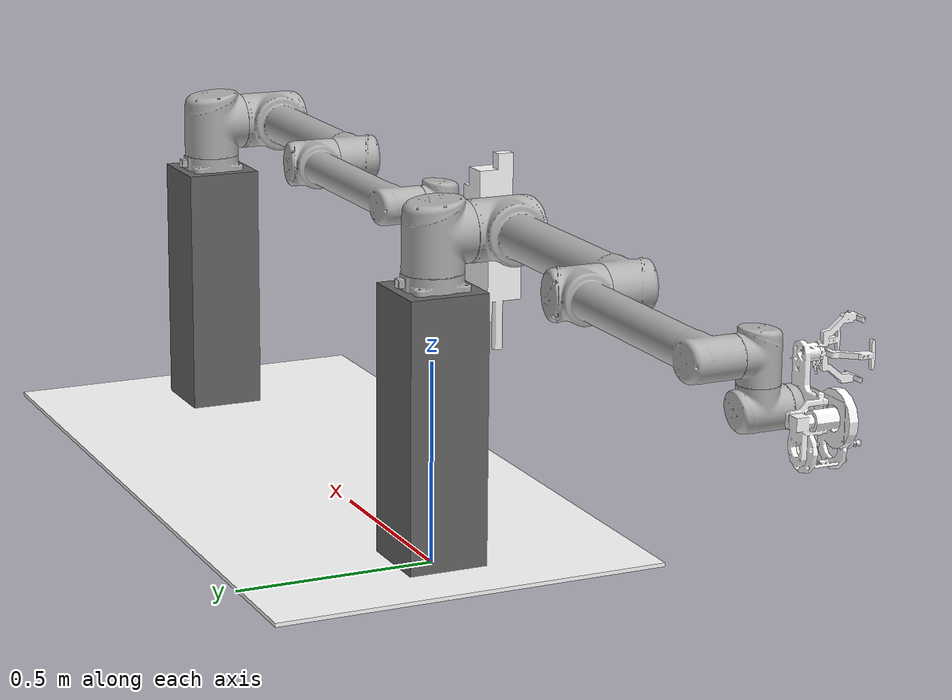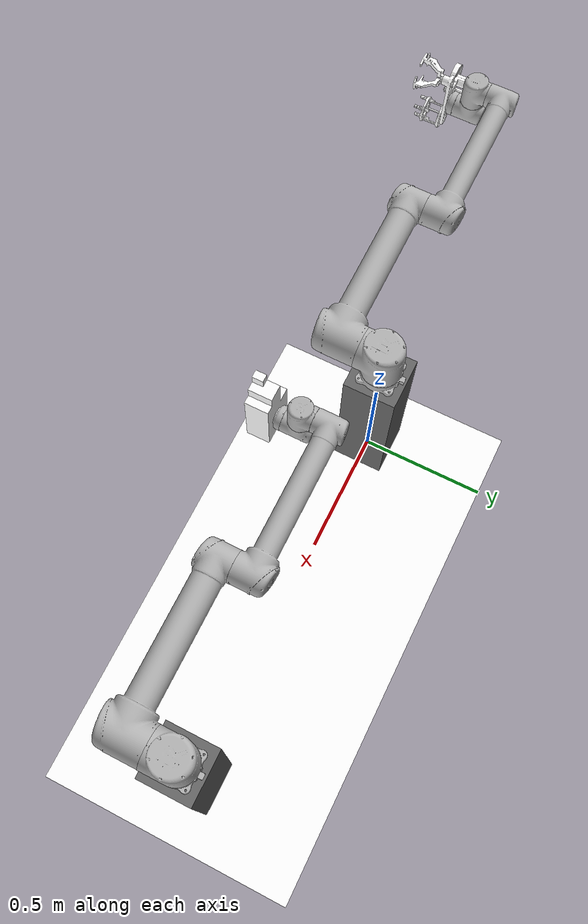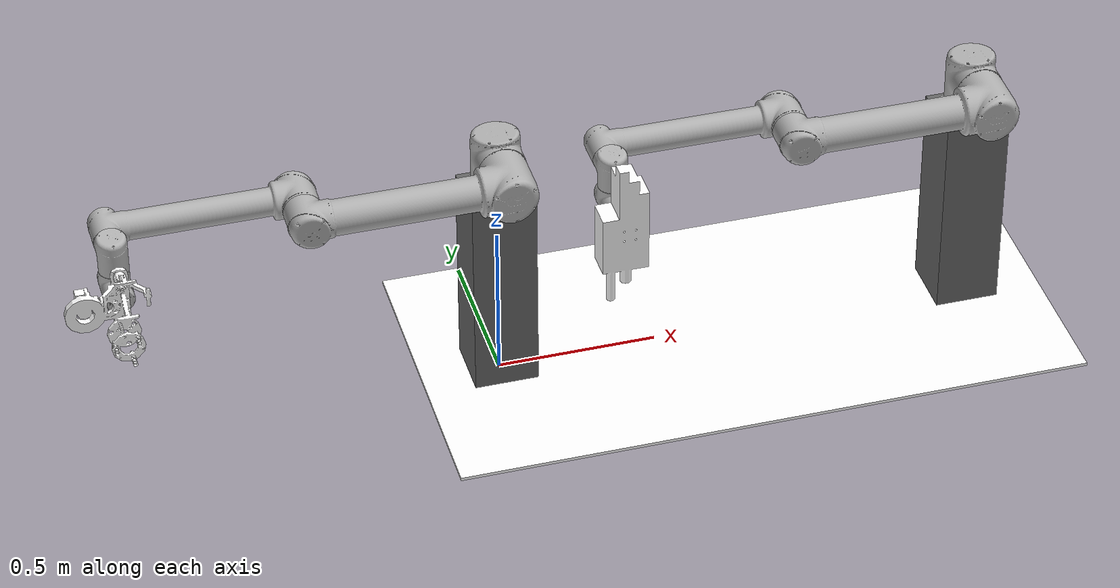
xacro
<?xml version="1.0"?>
<robot xmlns:xacro="http://www.ros.org/wiki/xacro"
       name="dual_ur10_robot">

  <xacro:property name="pi" value="3.1415926535897931"/>
  <xacro:arg name="prefix_robot1" default="robot1_"/>
  <xacro:arg name="prefix_robot2" default="robot2_"/>
  <xacro:arg name="limited_robot1" default="false"/>
  <xacro:arg name="limited_robot2" default="false"/>

  <!-- common stuff -->
  <xacro:include filename="$(find ur_description)/urdf/common.gazebo.xacro"/>

  <!-- robot1 -->
  <xacro:include filename="$(find ur_description)/urdf/robot1_ur10.urdf.xacro"/> <!-- file has been edited because of same variable names in ur5 and ur10 -->

  <!-- robot2 -->
  <xacro:include filename="$(find ur_description)/urdf/robot2_ur10.urdf.xacro"/> <!-- original file has been edited because of same variable names in ur5 and ur10 -->

  <!-- endeffector -->
  <xacro:include filename="$(find ur_description)/urdf/robot1_endeffector.urdf.xacro"/>
  <xacro:include filename="$(find ur_description)/urdf/robot2_endeffector.urdf.xacro"/>

  <!-- table -->
  <xacro:include filename="$(find ur_description)/urdf/table.urdf.xacro"/>

  <!-- place table -->
  <xacro:table/>

  <!-- place world reference -->
  <!-- place ur10 robot1 -->
  <xacro:ur10_robot1 prefix="$(arg prefix_robot1)" joint_limited="$(arg limited_robot1)"/>
  <joint name="$(arg prefix_robot1)platform_mount" type="fixed">
    <parent link="$(arg prefix_robot1)table_platform"/>
    <child link ="$(arg prefix_robot1)base_link"/>
    <origin xyz="0 0 0.68" rpy="0 0 ${pi}" />
  </joint>

  <!-- place robot1 endeffector -->
  <xacro:robot1_endeffector prefix="$(arg prefix_robot1)"/>
  <joint name="$(arg prefix_robot1)ee_mount" type="fixed">
    <parent link="$(arg prefix_robot1)ee_link" />
    <child link = "$(arg prefix_robot1)rg2_body_link" />
    <origin rpy="0 0 0" xyz="0.0 0 0.0"/>
  </joint>
  <!-- place ur10 robot2 -->
  <xacro:ur10_robot2 prefix="$(arg prefix_robot2)" joint_limited="$(arg limited_robot2)"/>
  <joint name="$(arg prefix_robot2)platform_mount" type="fixed">
    <parent link="$(arg prefix_robot2)table_platform"/>
    <child link ="$(arg prefix_robot2)base_link"/>
    <origin xyz="0 0 0.68" rpy="0 0 ${pi}" />
  </joint>

  <!-- place robot2 endeffector -->
  <xacro:robot2_endeffector prefix="$(arg prefix_robot2)"/>
  <joint name="$(arg prefix_robot2)ee_mount" type="fixed">
    <parent link="$(arg prefix_robot2)ee_link" />
    <child link = "$(arg prefix_robot2)rg2_body_link" />
    <origin rpy="1.5707963268 1.5707963268 0" xyz="0.0 0.0108 -0.0062"/>
  </joint>
</robot>

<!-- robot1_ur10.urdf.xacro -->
<robot xmlns:xacro="http://www.ros.org/wiki/xacro">
<!-- edited by Daniel Hoeltgen-->

<!--
  Author: Kelsey Hawkins
  Contributers: Jimmy Da Silva, Ajit Krisshna N L, Muhammad Asif Rana
-->

  <xacro:include filename="$(find ur_description)/urdf/ur.transmission.xacro" />
  <xacro:include filename="$(find ur_description)/urdf/ur.gazebo.xacro" />

  <property name="pi" value="3.14159265" />

  <!-- Inertia parameters -->
  <property name="ur10_base_mass" value="4.0" />  <!-- This mass might be incorrect -->
  <property name="ur10_shoulder_mass" value="7.778" />
  <property name="ur10_upper_arm_mass" value="12.93" />
  <property name="ur10_forearm_mass" value="3.87" />
  <property name="ur10_wrist_1_mass" value="1.96" />
  <property name="ur10_wrist_2_mass" value="1.96" />
  <property name="ur10_wrist_3_mass" value="0.202" />

  <property name="ur10_shoulder_cog" value="0.00008 0.00244 -0.037" />
  <property name="ur10_upper_arm_cog" value="0.00001 0.15061 0.38757" />
  <property name="ur10_forearm_cog" value="-0.00012 0.06112 0.1984" />
  <property name="ur10_wrist_1_cog" value="-0.00021 -0.00112 0.02269" />
  <property name="ur10_wrist_2_cog" value="-0.00021 0.00112 0.002269" />
  <property name="ur10_wrist_3_cog" value="0 -0.001156 -0.00149" />

  <!-- Kinematic model -->
  <!-- Properties from urcontrol.conf -->
  <property name="ur10_d1" value="0.1273" />
  <property name="ur10_a2" value="-0.612" />
  <property name="ur10_a3" value="-0.5723" />
  <property name="ur10_d4" value="0.163941" />
  <property name="ur10_d5" value="0.1157" />
  <property name="ur10_d6" value="0.0922" />

  <!-- Arbitrary offsets for shoulder/elbow joints -->
  <property name="ur10_shoulder_offset" value="0.220941" />  <!-- measured from model -->
  <property name="ur10_elbow_offset" value="-0.1719" /> <!-- measured from model -->

  <!-- link lengths used in model -->
  <property name="ur10_shoulder_height" value="${ur10_d1}" />
  <property name="ur10_upper_arm_length" value="${-ur10_a2}" />
  <property name="ur10_forearm_length" value="${-ur10_a3}" />
  <property name="ur10_wrist_1_length" value="${ur10_d4 - ur10_elbow_offset - ur10_shoulder_offset}" />
  <property name="ur10_wrist_2_length" value="${ur10_d5}" />
  <property name="ur10_wrist_3_length" value="${ur10_d6}" />

  <xacro:macro name="cylinder_inertial" params="radius length mass *origin">
    <inertial>
      <mass value="${mass}" />
      <insert_block name="origin" />
      <inertia ixx="${0.0833333 * mass * (3 * radius * radius + length * length)}" ixy="0.0" ixz="0.0"
        iyy="${0.0833333 * mass * (3 * radius * radius + length * length)}" iyz="0.0"
        izz="${0.5 * mass * radius * radius}" />
    </inertial>
  </xacro:macro>

  <xacro:macro name="ur10_robot1" params="prefix joint_limited">

    <link name="${prefix}base_link" >
      <visual>
        <geometry>
          <mesh filename="package://ur_description/meshes/ur10/visual/base.dae"/>
        </geometry>
        <material name="LightGrey">
          <color rgba="0.7 0.7 0.7 1.0"/>
        </material>
      </visual>
      <collision>
        <geometry>
          <mesh filename="package://ur_description/meshes/ur10/collision/base.stl"/>
        </geometry>
      </collision>
      <xacro:cylinder_inertial radius="0.075" length="0.038" mass="${ur10_base_mass}">
        <origin xyz="0.0 0.0 0.0" rpy="0 0 0" />
      </xacro:cylinder_inertial>
    </link>

    <joint name="${prefix}shoulder_pan_joint" type="revolute">
      <parent link="${prefix}base_link" />
      <child link = "${prefix}shoulder_link" />
      <origin xyz="0.0 0.0 ${ur10_shoulder_height}" rpy="0.0 0.0 0.0" />
      <axis xyz="0 0 1" />
      <xacro:unless value="${joint_limited}">
        <limit lower="${-2.0 * pi}" upper="${2.0 * pi}" effort="330.0" velocity="2.16"/>
      </xacro:unless>
      <xacro:if value="${joint_limited}">
        <limit lower="${-pi}" upper="${pi}" effort="330.0" velocity="2.16"/>
      </xacro:if>
      <dynamics damping="0.0" friction="0.0"/>
    </joint>

    <link name="${prefix}shoulder_link">
      <visual>
        <geometry>
          <mesh filename="package://ur_description/meshes/ur10/visual/shoulder.dae"/>
        </geometry>
        <material name="LightGrey">
          <color rgba="0.7 0.7 0.7 1.0"/>
        </material>
      </visual>
      <collision>
        <geometry>
          <mesh filename="package://ur_description/meshes/ur10/collision/shoulder.stl"/>
        </geometry>
      </collision>
      <xacro:cylinder_inertial radius="0.075" length="0.178" mass="${ur10_shoulder_mass}">
        <origin xyz="0.0 0.0 0.0" rpy="0 0 0" />
      </xacro:cylinder_inertial>
    </link>

    <joint name="${prefix}shoulder_lift_joint" type="revolute">
      <parent link="${prefix}shoulder_link" />
      <child link = "${prefix}upper_arm_link" />
      <origin xyz="0.0 ${ur10_shoulder_offset} 0.0" rpy="0.0 ${pi / 2.0} 0.0" />
      <axis xyz="0 1 0" />
      <xacro:unless value="${joint_limited}">
        <limit lower="${-2.0 * pi}" upper="${2.0 * pi}" effort="330.0" velocity="2.16"/>
      </xacro:unless>
      <xacro:if value="${joint_limited}">
        <limit lower="${-pi}" upper="${pi}" effort="330.0" velocity="2.16"/>
      </xacro:if>
      <dynamics damping="0.0" friction="0.0"/>
    </joint>

    <link name="${prefix}upper_arm_link">
      <visual>
        <geometry>
          <mesh filename="package://ur_description/meshes/ur10/visual/upperarm.dae"/>
        </geometry>
        <material name="LightGrey">
          <color rgba="0.7 0.7 0.7 1.0"/>
        </material>
      </visual>
      <collision>
        <geometry>
          <mesh filename="package://ur_description/meshes/ur10/collision/upperarm.stl"/>
        </geometry>
      </collision>
      <xacro:cylinder_inertial radius="0.075" length="${-ur10_a2}" mass="${ur10_upper_arm_mass}">
        <origin xyz="0.0 0.0 ${-ur10_a2/2.0}" rpy="0 0 0" />
      </xacro:cylinder_inertial>
    </link>

    <joint name="${prefix}elbow_joint" type="revolute">
      <parent link="${prefix}upper_arm_link" />
      <child link = "${prefix}forearm_link" />
      <origin xyz="0.0 ${ur10_elbow_offset} ${ur10_upper_arm_length}" rpy="0.0 0.0 0.0" />
      <axis xyz="0 1 0" />
      <xacro:unless value="${joint_limited}">
        <limit lower="${-2.0 * pi}" upper="${2.0 * pi}" effort="150.0" velocity="3.15"/>
      </xacro:unless>
      <xacro:if value="${joint_limited}">
        <limit lower="${-pi}" upper="${pi}" effort="150.0" velocity="3.15"/>
      </xacro:if>
      <dynamics damping="0.0" friction="0.0"/>
    </joint>

    <link name="${prefix}forearm_link">
      <visual>
         <geometry>
          <mesh filename="package://ur_description/meshes/ur10/visual/forearm.dae"/>
        </geometry>
        <material name="LightGrey">
          <color rgba="0.7 0.7 0.7 1.0"/>
        </material>
      </visual>
      <collision>
        <geometry>
          <mesh filename="package://ur_description/meshes/ur10/collision/forearm.stl"/>
        </geometry>
      </collision>
      <xacro:cylinder_inertial radius="0.075" length="${-ur10_a3}" mass="${ur10_forearm_mass}">
        <origin xyz="0.0 0.0 ${-ur10_a3/2.0}" rpy="0 0 0" />
      </xacro:cylinder_inertial>
    </link>

    <joint name="${prefix}wrist_1_joint" type="revolute">
      <parent link="${prefix}forearm_link" />
      <child link = "${prefix}wrist_1_link" />
      <origin xyz="0.0 0.0 ${ur10_forearm_length}" rpy="0.0 ${pi / 2.0} 0.0" />
      <axis xyz="0 1 0" />
      <xacro:unless value="${joint_limited}">
        <limit lower="${-2.0 * pi}" upper="${2.0 * pi}" effort="54.0" velocity="3.2"/>
      </xacro:unless>
      <xacro:if value="${joint_limited}">
        <limit lower="${-pi}" upper="${pi}" effort="54.0" velocity="3.2"/>
      </xacro:if>
      <dynamics damping="0.0" friction="0.0"/>
    </joint>

    <link name="${prefix}wrist_1_link">
      <visual>
        <geometry>
          <mesh filename="package://ur_description/meshes/ur10/visual/wrist1.dae"/>
        </geometry>
        <material name="LightGrey">
          <color rgba="0.7 0.7 0.7 1.0"/>
        </material>
      </visual>
      <collision>
        <geometry>
          <mesh filename="package://ur_description/meshes/ur10/collision/wrist1.stl"/>
        </geometry>
      </collision>
      <xacro:cylinder_inertial radius="0.075" length="0.12" mass="${ur10_wrist_1_mass}">
        <origin xyz="0.0 0.0 0.0" rpy="0 0 0" />
      </xacro:cylinder_inertial>
    </link>

    <joint name="${prefix}wrist_2_joint" type="revolute">
      <parent link="${prefix}wrist_1_link" />
      <child link = "${prefix}wrist_2_link" />
      <origin xyz="0.0 ${ur10_wrist_1_length} 0.0" rpy="0.0 0.0 0.0" />
      <axis xyz="0 0 1" />
      <xacro:unless value="${joint_limited}">
        <limit lower="${-2.0 * pi}" upper="${2.0 * pi}" effort="54.0" velocity="3.2"/>
      </xacro:unless>
      <xacro:if value="${joint_limited}">
        <limit lower="${-pi}" upper="${pi}" effort="54.0" velocity="3.2"/>
      </xacro:if>
      <dynamics damping="0.0" friction="0.0"/>
    </joint>

    <link name="${prefix}wrist_2_link">
      <visual>
        <geometry>
          <mesh filename="package://ur_description/meshes/ur10/visual/wrist2.dae"/>
        </geometry>
        <material name="LightGrey">
          <color rgba="0.7 0.7 0.7 1.0"/>
        </material>
      </visual>
      <collision>
        <geometry>
          <mesh filename="package://ur_description/meshes/ur10/collision/wrist2.stl"/>
        </geometry>
      </collision>
      <xacro:cylinder_inertial radius="0.075" length="0.12" mass="${ur10_wrist_2_mass}">
        <origin xyz="0.0 0.0 0.0" rpy="0 0 0" />
      </xacro:cylinder_inertial>
    </link>

    <joint name="${prefix}wrist_3_joint" type="revolute">
      <parent link="${prefix}wrist_2_link" />
      <child link = "${prefix}wrist_3_link" />
      <origin xyz="0.0 0.0 ${ur10_wrist_2_length}" rpy="0.0 0.0 0.0" />
      <axis xyz="0 1 0" />
      <xacro:unless value="${joint_limited}">
        <limit lower="${-2.0 * pi}" upper="${2.0 * pi}" effort="54.0" velocity="3.2"/>
      </xacro:unless>
      <xacro:if value="${joint_limited}">
        <limit lower="${-pi}" upper="${pi}" effort="54.0" velocity="3.2"/>
      </xacro:if>
      <dynamics damping="0.0" friction="0.0"/>
    </joint>

    <link name="${prefix}wrist_3_link">
      <visual>
        <geometry>
          <mesh filename="package://ur_description/meshes/ur10/visual/wrist3.dae"/>
        </geometry>
        <material name="LightGrey">
          <color rgba="0.7 0.7 0.7 1.0"/>
        </material>
      </visual>
      <collision>
        <geometry>
          <mesh filename="package://ur_description/meshes/ur10/collision/wrist3.stl"/>
        </geometry>
      </collision>
      <xacro:cylinder_inertial radius="0.075" length="0.12" mass="${ur10_wrist_3_mass}">
        <origin xyz="0.0 0.0 0.0" rpy="0 0 0" />
      </xacro:cylinder_inertial>
    </link>

    <joint name="${prefix}ee_fixed_joint" type="fixed">
      <parent link="${prefix}wrist_3_link" />
      <child link = "${prefix}ee_link" />
      <origin xyz="0.0 ${ur10_wrist_3_length} 0.0" rpy="0.0 0.0 ${pi/2.0}" />
    </joint>

    <link name="${prefix}ee_link">
      <collision>
        <geometry>
          <box size="0.01 0.01 0.01"/>
        </geometry>
        <origin rpy="0 0 0" xyz="-0.01 0 0"/>
      </collision>
    </link>

    <xacro:ur_arm_transmission prefix="${prefix}" />
    <xacro:ur_arm_gazebo prefix="${prefix}" />

    <!-- ROS base_link to UR 'Base' Coordinates transform -->
    <link name="${prefix}base"/>
    <joint name="${prefix}base_link-base_fixed_joint" type="fixed">
      <!-- NOTE: this rotation is only needed as long as base_link itself is
                 not corrected wrt the real robot (ie: rotated over 180
                 degrees)
      -->
      <origin xyz="0 0 0" rpy="0 0 ${-pi}"/>
      <parent link="${prefix}base_link"/>
      <child link="${prefix}base"/>
    </joint>

    <!-- Frame coincident with all-zeros TCP on UR controller -->
    <link name="${prefix}tool0"/>
    <joint name="${prefix}wrist_3_link-tool0_fixed_joint" type="fixed">
      <origin xyz="0 ${ur10_wrist_3_length} 0" rpy="${pi/-2.0} 0 0"/>
      <parent link="${prefix}wrist_3_link"/>
      <child link="${prefix}tool0"/>
    </joint>

  </xacro:macro>
</robot>

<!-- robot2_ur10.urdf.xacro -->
<robot xmlns:xacro="http://www.ros.org/wiki/xacro">
<!-- edited by Daniel Hoeltgen-->

<!--
  Author: Kelsey Hawkins
  Contributers: Jimmy Da Silva, Ajit Krisshna N L, Muhammad Asif Rana
-->

  <xacro:include filename="$(find ur_description)/urdf/ur.transmission.xacro" />
  <xacro:include filename="$(find ur_description)/urdf/ur.gazebo.xacro" />

  <property name="pi" value="3.14159265" />

  <!-- Inertia parameters -->
  <property name="ur10_base_mass" value="4.0" />  <!-- This mass might be incorrect -->
  <property name="ur10_shoulder_mass" value="7.778" />
  <property name="ur10_upper_arm_mass" value="12.93" />
  <property name="ur10_forearm_mass" value="3.87" />
  <property name="ur10_wrist_1_mass" value="1.96" />
  <property name="ur10_wrist_2_mass" value="1.96" />
  <property name="ur10_wrist_3_mass" value="0.202" />

  <property name="ur10_shoulder_cog" value="0.00008 0.00244 -0.037" />
  <property name="ur10_upper_arm_cog" value="0.00001 0.15061 0.38757" />
  <property name="ur10_forearm_cog" value="-0.00012 0.06112 0.1984" />
  <property name="ur10_wrist_1_cog" value="-0.00021 -0.00112 0.02269" />
  <property name="ur10_wrist_2_cog" value="-0.00021 0.00112 0.002269" />
  <property name="ur10_wrist_3_cog" value="0 -0.001156 -0.00149" />

  <!-- Kinematic model -->
  <!-- Properties from urcontrol.conf -->
  <property name="ur10_d1" value="0.1273" />
  <property name="ur10_a2" value="-0.612" />
  <property name="ur10_a3" value="-0.5723" />
  <property name="ur10_d4" value="0.163941" />
  <property name="ur10_d5" value="0.1157" />
  <property name="ur10_d6" value="0.0922" />

  <!-- Arbitrary offsets for shoulder/elbow joints -->
  <property name="ur10_shoulder_offset" value="0.220941" />  <!-- measured from model -->
  <property name="ur10_elbow_offset" value="-0.1719" /> <!-- measured from model -->

  <!-- link lengths used in model -->
  <property name="ur10_shoulder_height" value="${ur10_d1}" />
  <property name="ur10_upper_arm_length" value="${-ur10_a2}" />
  <property name="ur10_forearm_length" value="${-ur10_a3}" />
  <property name="ur10_wrist_1_length" value="${ur10_d4 - ur10_elbow_offset - ur10_shoulder_offset}" />
  <property name="ur10_wrist_2_length" value="${ur10_d5}" />
  <property name="ur10_wrist_3_length" value="${ur10_d6}" />

  <xacro:macro name="cylinder_inertial" params="radius length mass *origin">
    <inertial>
      <mass value="${mass}" />
      <insert_block name="origin" />
      <inertia ixx="${0.0833333 * mass * (3 * radius * radius + length * length)}" ixy="0.0" ixz="0.0"
        iyy="${0.0833333 * mass * (3 * radius * radius + length * length)}" iyz="0.0"
        izz="${0.5 * mass * radius * radius}" />
    </inertial>
  </xacro:macro>

  <xacro:macro name="ur10_robot2" params="prefix joint_limited">

    <link name="${prefix}base_link" >
      <visual>
        <geometry>
          <mesh filename="package://ur_description/meshes/ur10/visual/base.dae"/>
        </geometry>
        <material name="LightGrey">
          <color rgba="0.7 0.7 0.7 1.0"/>
        </material>
      </visual>
      <collision>
        <geometry>
          <mesh filename="package://ur_description/meshes/ur10/collision/base.stl"/>
        </geometry>
      </collision>
      <xacro:cylinder_inertial radius="0.075" length="0.038" mass="${ur10_base_mass}">
        <origin xyz="0.0 0.0 0.0" rpy="0 0 0" />
      </xacro:cylinder_inertial>
    </link>

    <joint name="${prefix}shoulder_pan_joint" type="revolute">
      <parent link="${prefix}base_link" />
      <child link = "${prefix}shoulder_link" />
      <origin xyz="0.0 0.0 ${ur10_shoulder_height}" rpy="0.0 0.0 0.0" />
      <axis xyz="0 0 1" />
      <xacro:unless value="${joint_limited}">
        <limit lower="${-2.0 * pi}" upper="${2.0 * pi}" effort="330.0" velocity="2.16"/>
      </xacro:unless>
      <xacro:if value="${joint_limited}">
        <limit lower="${-pi}" upper="${pi}" effort="330.0" velocity="2.16"/>
      </xacro:if>
      <dynamics damping="0.0" friction="0.0"/>
    </joint>

    <link name="${prefix}shoulder_link">
      <visual>
        <geometry>
          <mesh filename="package://ur_description/meshes/ur10/visual/shoulder.dae"/>
        </geometry>
        <material name="LightGrey">
          <color rgba="0.7 0.7 0.7 1.0"/>
        </material>
      </visual>
      <collision>
        <geometry>
          <mesh filename="package://ur_description/meshes/ur10/collision/shoulder.stl"/>
        </geometry>
      </collision>
      <xacro:cylinder_inertial radius="0.075" length="0.178" mass="${ur10_shoulder_mass}">
        <origin xyz="0.0 0.0 0.0" rpy="0 0 0" />
      </xacro:cylinder_inertial>
    </link>

    <joint name="${prefix}shoulder_lift_joint" type="revolute">
      <parent link="${prefix}shoulder_link" />
      <child link = "${prefix}upper_arm_link" />
      <origin xyz="0.0 ${ur10_shoulder_offset} 0.0" rpy="0.0 ${pi / 2.0} 0.0" />
      <axis xyz="0 1 0" />
      <xacro:unless value="${joint_limited}">
        <limit lower="${-2.0 * pi}" upper="${2.0 * pi}" effort="330.0" velocity="2.16"/>
      </xacro:unless>
      <xacro:if value="${joint_limited}">
        <limit lower="${-pi}" upper="${pi}" effort="330.0" velocity="2.16"/>
      </xacro:if>
      <dynamics damping="0.0" friction="0.0"/>
    </joint>

    <link name="${prefix}upper_arm_link">
      <visual>
        <geometry>
          <mesh filename="package://ur_description/meshes/ur10/visual/upperarm.dae"/>
        </geometry>
        <material name="LightGrey">
          <color rgba="0.7 0.7 0.7 1.0"/>
        </material>
      </visual>
      <collision>
        <geometry>
          <mesh filename="package://ur_description/meshes/ur10/collision/upperarm.stl"/>
        </geometry>
      </collision>
      <xacro:cylinder_inertial radius="0.075" length="${-ur10_a2}" mass="${ur10_upper_arm_mass}">
        <origin xyz="0.0 0.0 ${-ur10_a2/2.0}" rpy="0 0 0" />
      </xacro:cylinder_inertial>
    </link>

    <joint name="${prefix}elbow_joint" type="revolute">
      <parent link="${prefix}upper_arm_link" />
      <child link = "${prefix}forearm_link" />
      <origin xyz="0.0 ${ur10_elbow_offset} ${ur10_upper_arm_length}" rpy="0.0 0.0 0.0" />
      <axis xyz="0 1 0" />
      <xacro:unless value="${joint_limited}">
        <limit lower="${-2.0 * pi}" upper="${2.0 * pi}" effort="150.0" velocity="3.15"/>
      </xacro:unless>
      <xacro:if value="${joint_limited}">
        <limit lower="${-pi}" upper="${pi}" effort="150.0" velocity="3.15"/>
      </xacro:if>
      <dynamics damping="0.0" friction="0.0"/>
    </joint>

    <link name="${prefix}forearm_link">
      <visual>
         <geometry>
          <mesh filename="package://ur_description/meshes/ur10/visual/forearm.dae"/>
        </geometry>
        <material name="LightGrey">
          <color rgba="0.7 0.7 0.7 1.0"/>
        </material>
      </visual>
      <collision>
        <geometry>
          <mesh filename="package://ur_description/meshes/ur10/collision/forearm.stl"/>
        </geometry>
      </collision>
      <xacro:cylinder_inertial radius="0.075" length="${-ur10_a3}" mass="${ur10_forearm_mass}">
        <origin xyz="0.0 0.0 ${-ur10_a3/2.0}" rpy="0 0 0" />
      </xacro:cylinder_inertial>
    </link>

    <joint name="${prefix}wrist_1_joint" type="revolute">
      <parent link="${prefix}forearm_link" />
      <child link = "${prefix}wrist_1_link" />
      <origin xyz="0.0 0.0 ${ur10_forearm_length}" rpy="0.0 ${pi / 2.0} 0.0" />
      <axis xyz="0 1 0" />
      <xacro:unless value="${joint_limited}">
        <limit lower="${-2.0 * pi}" upper="${2.0 * pi}" effort="54.0" velocity="3.2"/>
      </xacro:unless>
      <xacro:if value="${joint_limited}">
        <limit lower="${-pi}" upper="${pi}" effort="54.0" velocity="3.2"/>
      </xacro:if>
      <dynamics damping="0.0" friction="0.0"/>
    </joint>

    <link name="${prefix}wrist_1_link">
      <visual>
        <geometry>
          <mesh filename="package://ur_description/meshes/ur10/visual/wrist1.dae"/>
        </geometry>
        <material name="LightGrey">
          <color rgba="0.7 0.7 0.7 1.0"/>
        </material>
      </visual>
      <collision>
        <geometry>
          <mesh filename="package://ur_description/meshes/ur10/collision/wrist1.stl"/>
        </geometry>
      </collision>
      <xacro:cylinder_inertial radius="0.075" length="0.12" mass="${ur10_wrist_1_mass}">
        <origin xyz="0.0 0.0 0.0" rpy="0 0 0" />
      </xacro:cylinder_inertial>
    </link>

    <joint name="${prefix}wrist_2_joint" type="revolute">
      <parent link="${prefix}wrist_1_link" />
      <child link = "${prefix}wrist_2_link" />
      <origin xyz="0.0 ${ur10_wrist_1_length} 0.0" rpy="0.0 0.0 0.0" />
      <axis xyz="0 0 1" />
      <xacro:unless value="${joint_limited}">
        <limit lower="${-2.0 * pi}" upper="${2.0 * pi}" effort="54.0" velocity="3.2"/>
      </xacro:unless>
      <xacro:if value="${joint_limited}">
        <limit lower="${-pi}" upper="${pi}" effort="54.0" velocity="3.2"/>
      </xacro:if>
      <dynamics damping="0.0" friction="0.0"/>
    </joint>

    <link name="${prefix}wrist_2_link">
      <visual>
        <geometry>
          <mesh filename="package://ur_description/meshes/ur10/visual/wrist2.dae"/>
        </geometry>
        <material name="LightGrey">
          <color rgba="0.7 0.7 0.7 1.0"/>
        </material>
      </visual>
      <collision>
        <geometry>
          <mesh filename="package://ur_description/meshes/ur10/collision/wrist2.stl"/>
        </geometry>
      </collision>
      <xacro:cylinder_inertial radius="0.075" length="0.12" mass="${ur10_wrist_2_mass}">
        <origin xyz="0.0 0.0 0.0" rpy="0 0 0" />
      </xacro:cylinder_inertial>
    </link>

    <joint name="${prefix}wrist_3_joint" type="revolute">
      <parent link="${prefix}wrist_2_link" />
      <child link = "${prefix}wrist_3_link" />
      <origin xyz="0.0 0.0 ${ur10_wrist_2_length}" rpy="0.0 0.0 0.0" />
      <axis xyz="0 1 0" />
      <xacro:unless value="${joint_limited}">
        <limit lower="${-2.0 * pi}" upper="${2.0 * pi}" effort="54.0" velocity="3.2"/>
      </xacro:unless>
      <xacro:if value="${joint_limited}">
        <limit lower="${-pi}" upper="${pi}" effort="54.0" velocity="3.2"/>
      </xacro:if>
      <dynamics damping="0.0" friction="0.0"/>
    </joint>

    <link name="${prefix}wrist_3_link">
      <visual>
        <geometry>
          <mesh filename="package://ur_description/meshes/ur10/visual/wrist3.dae"/>
        </geometry>
        <material name="LightGrey">
          <color rgba="0.7 0.7 0.7 1.0"/>
        </material>
      </visual>
      <collision>
        <geometry>
          <mesh filename="package://ur_description/meshes/ur10/collision/wrist3.stl"/>
        </geometry>
      </collision>
      <xacro:cylinder_inertial radius="0.075" length="0.12" mass="${ur10_wrist_3_mass}">
        <origin xyz="0.0 0.0 0.0" rpy="0 0 0" />
      </xacro:cylinder_inertial>
    </link>

    <joint name="${prefix}ee_fixed_joint" type="fixed">
      <parent link="${prefix}wrist_3_link" />
      <child link = "${prefix}ee_link" />
      <origin xyz="0.0 ${ur10_wrist_3_length} 0.0" rpy="0.0 0.0 ${pi/2.0}" />
    </joint>

    <link name="${prefix}ee_link">
      <collision>
        <geometry>
          <box size="0.01 0.01 0.01"/>
        </geometry>
        <origin rpy="0 0 0" xyz="-0.01 0 0"/>
      </collision>
    </link>

    <xacro:ur_arm_transmission prefix="${prefix}" />
    <xacro:ur_arm_gazebo prefix="${prefix}" />

    <!-- ROS base_link to UR 'Base' Coordinates transform -->
    <link name="${prefix}base"/>
    <joint name="${prefix}base_link-base_fixed_joint" type="fixed">
      <!-- NOTE: this rotation is only needed as long as base_link itself is
                 not corrected wrt the real robot (ie: rotated over 180
                 degrees)
      -->
      <origin xyz="0 0 0" rpy="0 0 ${-pi}"/>
      <parent link="${prefix}base_link"/>
      <child link="${prefix}base"/>
    </joint>

    <!-- Frame coincident with all-zeros TCP on UR controller -->
    <link name="${prefix}tool0"/>
    <joint name="${prefix}wrist_3_link-tool0_fixed_joint" type="fixed">
      <origin xyz="0 ${ur10_wrist_3_length} 0" rpy="${pi/-2.0} 0 0"/>
      <parent link="${prefix}wrist_3_link"/>
      <child link="${prefix}tool0"/>
    </joint>

  </xacro:macro>
</robot>

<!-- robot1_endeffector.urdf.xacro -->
<robot xmlns:sensor="http://playerstage.sourceforge.net/gazebo/xmlschema/#sensor"
       xmlns:controller="http://playerstage.sourceforge.net/gazebo/xmlschema/#controller"
       xmlns:interface="http://playerstage.sourceforge.net/gazebo/xmlschema/#interface"
       xmlns:xacro="http://ros.org/wiki/xacro">

  <xacro:macro name="robot1_endeffector" params="prefix">
  <link name="${prefix}rg2_body_link">
    <visual>
      <origin rpy="0 1.5707963268 1.5707963268" xyz="0.012 0.0 0.0"/>
      <geometry>
        <mesh filename="package://ur5_rg2_description/meshes/rg2_gripper/zuhejiaju.stl" scale="0.001 0.001 0.001"/>
      </geometry>
      <material name="white">
        <color rgba="1 1 1 1"/>
      </material>
    </visual>
    <collision>
      <origin rpy="0 1.5707963268 1.5707963268" xyz="0.012 0.0 0.0"/>
      <geometry>
        <mesh filename="package://ur5_rg2_description/meshes/rg2_gripper/zuhejiaju.stl" scale="0.001 0.001 0.001"/>
      </geometry>
    </collision>
    <inertial>
      <mass value="1"/>
      <inertia ixx="1" ixy="0.0" ixz="0.0" iyy="1" iyz="0.0" izz="1"/>
    </inertial>
  </link>

  <link name="${prefix}suction_eef_link"/>

  <joint name="${prefix}suction_eef_joint" type="fixed">
    <origin rpy="0 0 0" xyz="0.125 0.0 0.095"/>
    <parent link="${prefix}rg2_body_link"/>
    <child link="${prefix}suction_eef_link"/>
  </joint>

  <link name="${prefix}gripper_eef_link"/>

  <joint name="${prefix}gripper_eef_joint" type="fixed">
    <origin rpy="1.5707963268 1.5707963268 0" xyz="0.125 0.0 -0.105"/>
    <parent link="${prefix}rg2_body_link"/>
    <child link="${prefix}gripper_eef_link"/>
  </joint>

  <link name="${prefix}camera_eef_link"/>

  <joint name="${prefix}camera_eef_joint" type="fixed">
    <origin rpy="0 0 0" xyz="0.0332 0.1095 0.0"/>
    <parent link="${prefix}rg2_body_link"/>
    <child link="${prefix}camera_eef_link"/>
  </joint>

  </xacro:macro>
</robot>

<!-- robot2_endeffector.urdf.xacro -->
<robot xmlns:sensor="http://playerstage.sourceforge.net/gazebo/xmlschema/#sensor"
       xmlns:controller="http://playerstage.sourceforge.net/gazebo/xmlschema/#controller"
       xmlns:interface="http://playerstage.sourceforge.net/gazebo/xmlschema/#interface"
       xmlns:xacro="http://ros.org/wiki/xacro">

  <xacro:macro name="robot2_endeffector" params="prefix">
  <link name="${prefix}rg2_body_link">
    <visual>
      <origin rpy="0 1.5707963268 0" xyz="0.0 0.0 0.0"/>

      <geometry>
        <mesh filename="package://ur5_rg2_description/meshes/rg2_gripper/suoluosi-3d(1).stl" scale="0.001 0.001 0.001" />

      </geometry>
      <material name="white">
        <color rgba="1 1 1 1"/>
      </material>
    </visual>
    <collision>
      <origin rpy="0 1.5707963268 0" xyz="0.0 0.0 0.0"/>

      <geometry>
        <mesh filename="package://ur5_rg2_description/meshes/rg2_gripper/suoluosi-3d(1).stl" scale="0.001 0.001 0.001" />

      </geometry>
    </collision>
    <inertial>
      <mass value="1"/>
      <inertia ixx="1" ixy="0.0" ixz="0.0" iyy="1" iyz="0.0" izz="1"/>
    </inertial>
  </link>

  <link name="${prefix}rg2_eef_link"/>

  <joint name="${prefix}rg2_eef_joint" type="fixed">
    <origin rpy="0 0 0" xyz="0.228 0.07 -0.006"/>
    <parent link="${prefix}rg2_body_link"/>
    <child link="${prefix}rg2_eef_link"/>
  </joint>

  </xacro:macro>
</robot>

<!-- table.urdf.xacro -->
<robot xmlns:sensor="http://playerstage.sourceforge.net/gazebo/xmlschema/#sensor"
       xmlns:controller="http://playerstage.sourceforge.net/gazebo/xmlschema/#controller"
       xmlns:interface="http://playerstage.sourceforge.net/gazebo/xmlschema/#interface"
       xmlns:xacro="http://ros.org/wiki/xacro">

  <xacro:macro name="table">
  <link name="table_ground">
    <visual>
      <geometry>
        <box size="2.0 1.0 0.01"/>
      </geometry>
      <origin xyz="0.75 0 0.005" rpy="0 0 0"/>
      <material name="white">
        <color rgba="1 1 1 1"/>
      </material>
    </visual>
    <collision>
      <geometry>
        <box size="2.0 1.0 0.01"/>
      </geometry>
      <origin xyz="0.75 0 0.005" rpy="0 0 0"/>
    </collision>
    <inertial>
      <origin xyz="0 0 0" rpy="0 0 0"/>
      <mass value="100"/>
      <inertia ixx="1"  ixy="0"  ixz="0" iyy="1" iyz="0" izz="1" />
    </inertial>
  </link>

  <link name="$(arg prefix_robot1)table_platform">
    <visual>
      <geometry>
        <box size="0.2 0.2 0.68"/>
      </geometry>
      <origin xyz="0 0 0.34" rpy="0 0 0"/>
      <material name="steel">
        <color rgba="0.4 0.4 0.4 1"/>
      </material>
    </visual>
    <collision>
      <geometry>
        <box size="0.2 0.2 0.68"/>
      </geometry>
      <origin xyz="0 0 0.34" rpy="0 0 0"/>
    </collision>
    <inertial>
      <origin xyz="0 0 0" rpy="0 0 0"/>
      <mass value="50"/>
      <inertia ixx="1"  ixy="0"  ixz="0" iyy="1" iyz="0" izz="1" />
    </inertial>
  </link>

  <joint name="$(arg prefix_robot1)table_ground_to_platform" type="fixed">
    <parent link="table_ground"/>
    <child link="$(arg prefix_robot1)table_platform"/>
    <origin xyz="0.0 0.0 0.0" rpy="0 0 0"/>
  </joint>

  <link name="$(arg prefix_robot2)table_platform">
    <visual>
      <geometry>
        <box size="0.2 0.2 0.68"/>
      </geometry>
      <origin xyz="0 0 0.34" rpy="0 0 0"/>
      <material name="steel">
        <color rgba="0.4 0.4 0.4 1"/>
      </material>
    </visual>
    <collision>
      <geometry>
        <box size="0.2 0.2 0.68"/>
      </geometry>
      <origin xyz="0 0 0.34" rpy="0 0 0"/>
    </collision>
    <inertial>
      <origin xyz="0 0 0" rpy="0 0 0"/>
      <mass value="50"/>
      <inertia ixx="1"  ixy="0"  ixz="0" iyy="1" iyz="0" izz="1" />
    </inertial>
  </link>

  <joint name="$(arg prefix_robot2)table_ground_to_platform" type="fixed">
    <parent link="table_ground"/>
    <child link="$(arg prefix_robot2)table_platform"/>
    <origin xyz="1.50 0 0.0" rpy="0 0 0"/>
  </joint>

  </xacro:macro>

</robot>
